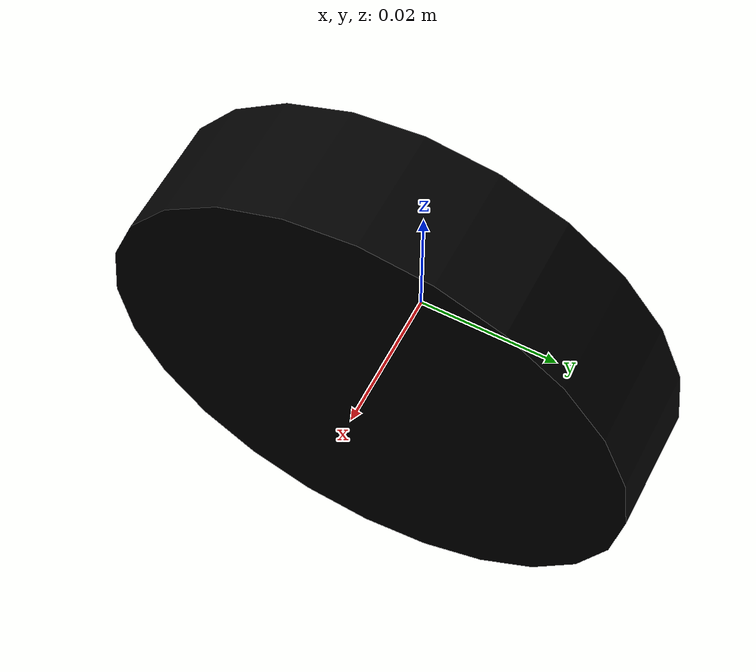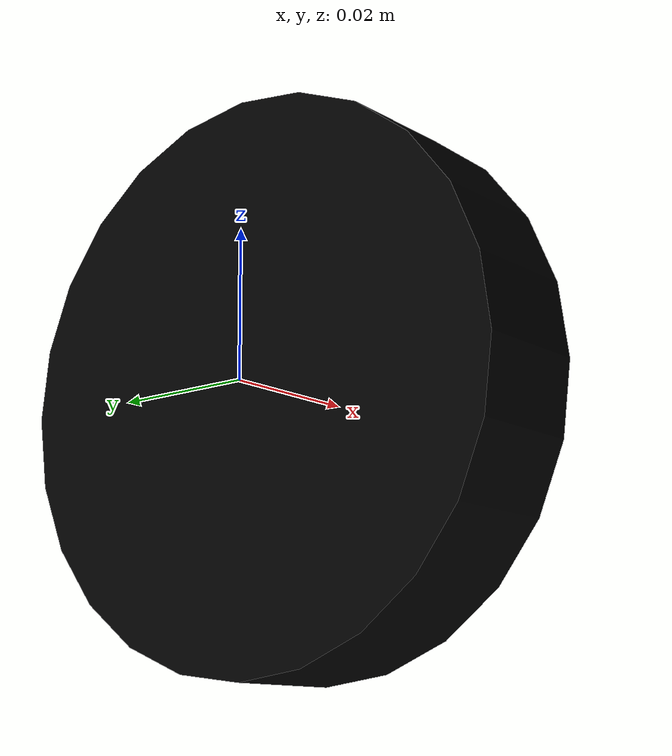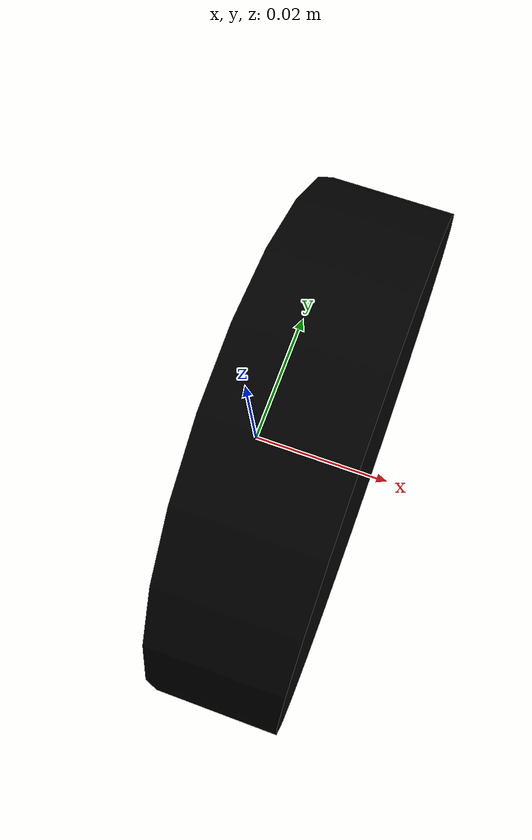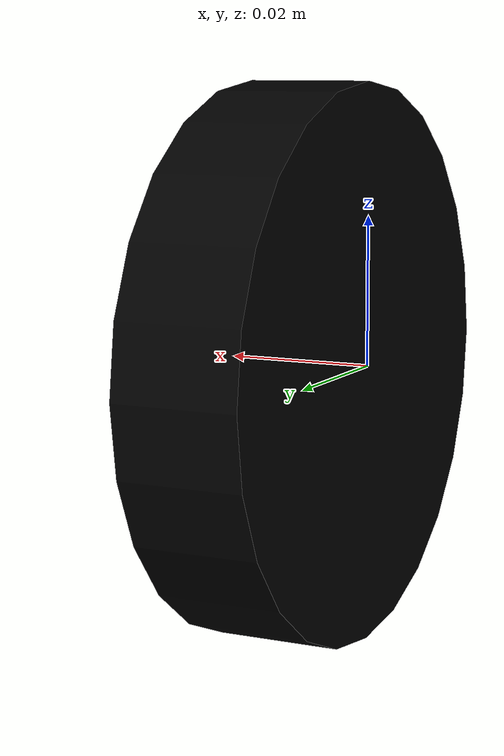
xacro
<?xml version="1.0"?>
<robot xmlns:xacro="http://wiki.ros.org/xacro" name="gripper_base">

  <xacro:include filename="$(find flange)/urdf/gripper_base_macro.xacro"/>
  <xacro:gripper_base prefix="" />

  <link name="world"/>
  <joint name="world_joint" type="fixed">
    <parent link="world"/>
    <child link="gripper_base"/>
    <origin xyz="0 0 0" rpy="0 0 0"/>
  </joint>

</robot>

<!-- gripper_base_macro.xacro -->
<robot xmlns:xacro="http://wiki.ros.org/xacro">

  <xacro:macro name="gripper_base" params="prefix">
    <link name="${prefix}gripper_base">
      <inertial>
        <mass value="0.3"/>
        <inertia ixx="0.0" ixy="0.0" ixz="0.0" iyy="0.0" iyz="0.0" izz="0.0"/>
      </inertial>

      <visual>
        <origin xyz="0 0 0" rpy="0 0 0" />
        <geometry>
          <mesh filename="package://flange/meshes/gripper_base.stl" />
        </geometry>
        <material name="">
          <color rgba="0.0 0.0 0.0 1" />
        </material>
      </visual>

      <collision>
        <geometry>
          <mesh filename="package://flange/meshes/gripper_base.stl" />
        </geometry>
      </collision>
    </link>

    <link name="${prefix}gripper_top"/>

    <joint name="gripper_base-gripper_top" type="fixed">
    <origin xyz="0.017 0 0" rpy="0 0 0"/>
      <parent link="${prefix}gripper_base"/>
      <child link="${prefix}gripper_top" />
    </joint>

    <gazebo reference="${prefix}gripper_base">
      <material>Gazebo/Black</material>
    </gazebo>

  </xacro:macro>

</robot>
